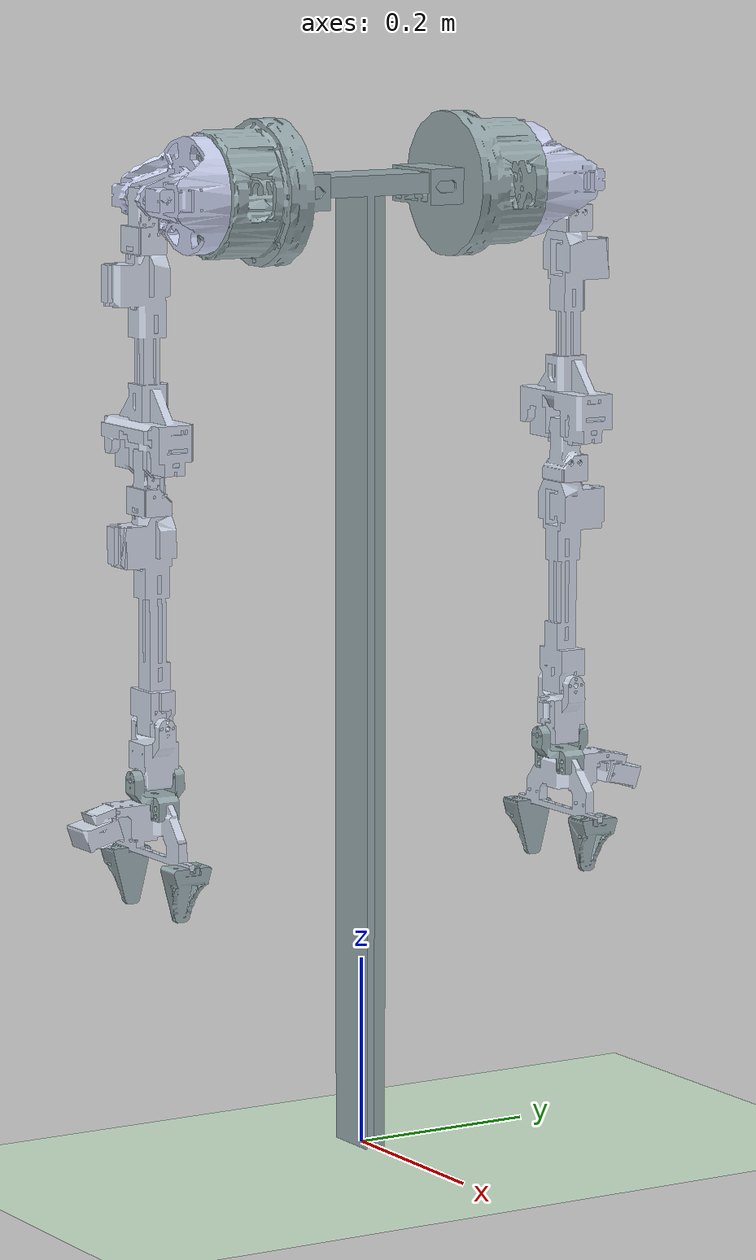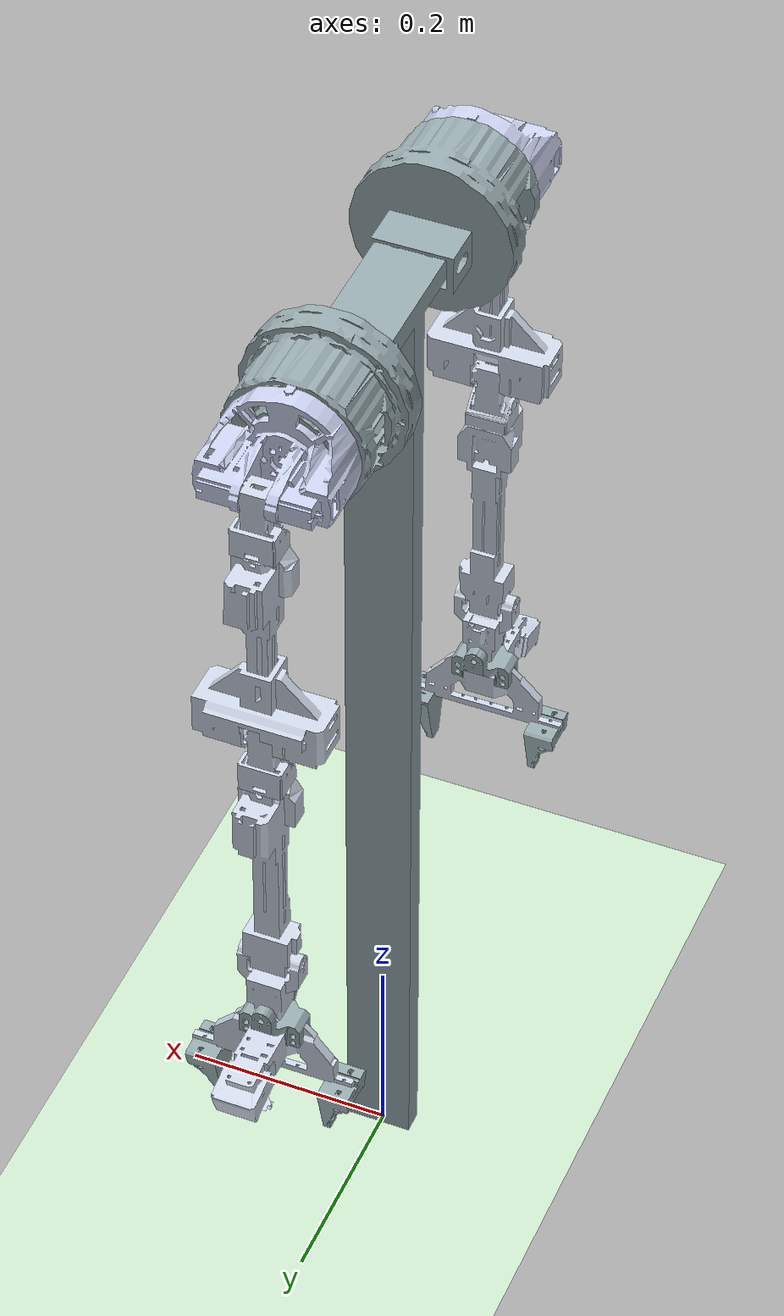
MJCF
<mujoco model="Bessica_D_v1_0_Skeleton">
  <compiler angle="radian" meshdir="../../meshes/Bessica_D_v1_0/SkeletonOnly/" />
  <statistic center="-0.012496 0.000424702 0.622672" extent="1.93611" meansize="0.179951" />

  <asset>
    <mesh name="base_link" file="base_link.STL" />
    <mesh name="left_arm_base_link" file="left_arm_base_link.STL" />
    <mesh name="left_arm_link1" file="left_arm_link1.STL" />
    <mesh name="left_arm_link2" file="left_arm_link2.STL" />
    <mesh name="left_arm_link3" file="left_arm_link3.STL" />
    <mesh name="left_arm_link4" file="left_arm_link4.STL" />
    <mesh name="left_arm_link5" file="left_arm_link5.STL" />
    <mesh name="left_arm_link6" file="left_arm_link6.STL" />
    <mesh name="left_arm_link7" file="left_arm_link7.STL" />
    <mesh name="left_arm_gripper_base" file="left_arm_gripper_base.STL" />
    <mesh name="left_arm_gripper_left_finger" file="left_arm_gripper_left_finger.STL" />
    <mesh name="left_arm_gripper_right_finger" file="left_arm_gripper_right_finger.STL" />
    <mesh name="right_arm_base_link" file="right_arm_base_link.STL" />
    <mesh name="right_arm_link1" file="right_arm_link1.STL" />
    <mesh name="right_arm_link2" file="right_arm_link2.STL" />
    <mesh name="right_arm_link3" file="right_arm_link3.STL" />
    <mesh name="right_arm_link4" file="right_arm_link4.STL" />
    <mesh name="right_arm_link5" file="right_arm_link5.STL" />
    <mesh name="right_arm_link6" file="right_arm_link6.STL" />
    <mesh name="right_arm_link7" file="right_arm_link7.STL" />
    <mesh name="right_arm_gripper_base" file="right_arm_gripper_base.STL" />
    <mesh name="right_arm_gripper_left_finger" file="right_arm_gripper_left_finger.STL" />
    <mesh name="right_arm_gripper_right_finger" file="right_arm_gripper_right_finger.STL" />
    <texture builtin="gradient" height="100" rgb1=".4 .5 .6" rgb2="0 0 0" type="skybox" width="100" />
    <texture builtin="checker" height="100" name="texplane" rgb1="1 1 1" rgb2=".8 .9 1" type="2d" width="100" />
    <material name="MatPlane" reflectance="0.5" texrepeat="1 1" texture="texplane" texuniform="true" />
    <material name="white" rgba="1 1 1 1" shininess="0.5" specular="0.1" />
    <material name="black" rgba="0.15 0.15 0.15 1" shininess="0.2" specular="0.05" />
    <material name="invisible" rgba="1 1 1 0" shininess="0" specular="0" />
  </asset>

  <worldbody>
    <geom conaffinity="1" condim="3" contype="1" friction="1 .1 .1" group="2" material="MatPlane" name="floor" pos="0 0 0" rgba="0.8 0.9 0.8 1" size="500 500 0.125" type="plane" />
    <light castshadow="false" cutoff="100" diffuse="1 1 1" dir="-0 0 -1.3" directional="true" exponent="1" pos="0 0 1.3" specular=".1 .1 .1" />
    <body name="base_link" pos="0 0 0">
      <inertial pos="0 0 0.051" mass="3.74344" diaginertia="0.00230599 0.00230599 0.00230599" />
      <geom type="mesh" contype="0" conaffinity="0" group="1" density="0" rgba="0.592157 0.666667 0.682353 1" mesh="base_link" />
      <geom type="mesh" rgba="0.592157 0.666667 0.682353 1" mesh="base_link" />
      <geom pos="0 0.1 1.015" quat="0.707107 -0.707107 0 0" type="mesh" contype="0" conaffinity="0" group="1" density="0" rgba="0.592157 0.666667 0.682353 1" mesh="left_arm_base_link" />
      <geom pos="0 0.1 1.015" quat="0.707107 -0.707107 0 0" type="mesh" rgba="0.592157 0.666667 0.682353 1" mesh="left_arm_base_link" />
      <geom pos="0 -0.1 1.015" quat="0.707107 0.707107 0 0" type="mesh" contype="0" conaffinity="0" group="1" density="0" rgba="0.592157 0.666667 0.682353 1" mesh="right_arm_base_link" />
      <geom pos="0 -0.1 1.015" quat="0.707107 0.707107 0 0" type="mesh" rgba="0.592157 0.666667 0.682353 1" mesh="right_arm_base_link" />
      <body name="left_arm_link1" pos="0 0.2145 1.015" quat="0.707107 0.707107 0 0">
        <inertial pos="-0.000164978 6.51728e-05 -0.0024357" quat="0.0012119 0.704936 -0.00489326 0.709253" mass="0.189922" diaginertia="0.000330272 0.000249765 0.000146333" />
        <joint name="left_arm_joint1" pos="0 0 0" axis="0 0 1" range="-2.14 2.14" actuatorfrcrange="-12 12" />
        <geom type="mesh" contype="0" conaffinity="0" group="1" density="0" rgba="0.796078 0.823529 0.937255 1" mesh="left_arm_link1" />
        <geom type="mesh" rgba="0.796078 0.823529 0.937255 1" mesh="left_arm_link1" />
        <body name="left_arm_link2" pos="0.00045 0 -0.04287" quat="0.5 -0.5 0.5 -0.5">
          <inertial pos="0.0292979 0.000514106 0.00037109" quat="0.607053 0.424784 0.480473 0.469245" mass="0.0465253" diaginertia="1.57559e-05 1.51621e-05 7.00441e-06" />
          <joint name="left_arm_joint2" pos="0 0 0" axis="0 0 1" range="-0.25 2.14" actuatorfrcrange="-12 12" />
          <geom type="mesh" contype="0" conaffinity="0" group="1" density="0" rgba="0.807843 0.843137 0.905882 1" mesh="left_arm_link2" />
          <geom type="mesh" rgba="0.807843 0.843137 0.905882 1" mesh="left_arm_link2" />
          <body name="left_arm_link3" pos="0.06395 -0.0001 -5e-05" quat="0.5 0.5 -0.5 -0.5">
            <inertial pos="0.000585817 2.67134e-05 -0.120888" quat="0.705612 0.708341 -0.0135456 0.0134441" mass="0.213446" diaginertia="0.000225683 0.000161805 0.000143351" />
            <joint name="left_arm_joint3" pos="0 0 0" axis="0 0 1" range="-2.14 2.14" actuatorfrcrange="-12 12" />
            <geom type="mesh" contype="0" conaffinity="0" group="1" density="0" rgba="0.807843 0.843137 0.905882 1" mesh="left_arm_link3" />
            <geom type="mesh" rgba="0.807843 0.843137 0.905882 1" mesh="left_arm_link3" />
            <body name="left_arm_link4" pos="0.00384 5e-05 -0.20261" quat="0.707107 -0.707107 0 0">
              <inertial pos="-0.000541939 0.0284058 0.000320347" quat="0.639534 0.763579 -0.0839367 0.0299576" mass="0.0480071" diaginertia="1.64685e-05 1.57747e-05 7.22527e-06" />
              <joint name="left_arm_joint4" pos="0 0 0" axis="0 0 1" range="-1.57 1.57" actuatorfrcrange="-12 12" />
              <geom type="mesh" contype="0" conaffinity="0" group="1" density="0" rgba="0.807843 0.843137 0.905882 1" mesh="left_arm_link4" />
              <geom type="mesh" rgba="0.807843 0.843137 0.905882 1" mesh="left_arm_link4" />
              <body name="left_arm_link5" pos="0 0.06395 -0.00025" quat="0.707107 0.707107 0 0">
                <inertial pos="-0.000910668 -0.000236819 -0.0811518" quat="0.706373 -0.0214097 -0.0227093 0.707152" mass="0.11632" diaginertia="0.000100264 9.34946e-05 3.80105e-05" />
                <joint name="left_arm_joint5" pos="0 0 0" axis="0 0 1" range="-2.14 2.14" actuatorfrcrange="-12 12" />
                <geom type="mesh" contype="0" conaffinity="0" group="1" density="0" rgba="0.807843 0.843137 0.905882 1" mesh="left_arm_link5" />
                <geom type="mesh" rgba="0.807843 0.843137 0.905882 1" mesh="left_arm_link5" />
                <body name="left_arm_link6" pos="0.00384 0 -0.2106" quat="0.707107 -0.707107 0 0">
                  <inertial pos="0.000759195 0.0240066 4.41836e-05" quat="0.999602 0.00398416 -0.000608784 0.0279095" mass="0.0325623" diaginertia="1.56847e-05 1.2779e-05 9.25012e-06" />
                  <joint name="left_arm_joint6" pos="0 0 0" axis="0 0 1" range="-1.57 1.57" actuatorfrcrange="-12 12" />
                  <geom type="mesh" contype="0" conaffinity="0" group="1" density="0" rgba="0.807843 0.843137 0.905882 1" mesh="left_arm_link6" />
                  <geom type="mesh" rgba="0.807843 0.843137 0.905882 1" mesh="left_arm_link6" />
                  <body name="left_arm_link7" pos="0.0009 0.0556 0" quat="0.5 -0.5 -0.5 0.5">
                    <inertial pos="0.0419064 -0.000135185 0.0266704" quat="0.702948 0.64131 0.227637 -0.206801" mass="0.130618" diaginertia="0.000133483 9.13959e-05 8.92644e-05" />
                    <joint name="left_arm_joint7" pos="0 0 0" axis="0 0 -1" range="-1.57 1.57" actuatorfrcrange="-12 12" />
                    <geom type="mesh" contype="0" conaffinity="0" group="1" density="0" rgba="0.592157 0.666667 0.682353 1" mesh="left_arm_link7" />
                    <geom type="mesh" rgba="0.592157 0.666667 0.682353 1" mesh="left_arm_link7" />
                    <geom type="mesh" contype="0" conaffinity="0" group="1" density="0" rgba="0.807843 0.843137 0.905882 1" mesh="left_arm_gripper_base" />
                    <geom type="mesh" rgba="0.807843 0.843137 0.905882 1" mesh="left_arm_gripper_base" />
                    <body name="left_arm_gripper_left_finger" pos="0.14128 0.05 5e-05" quat="0.707107 0.707107 0 0">
                      <inertial pos="-0.0434087 -1.54744e-08 -0.0111596" quat="1.78243e-06 0.569751 -6.42992e-06 0.821818" mass="0.0256463" diaginertia="8.50963e-06 6.46826e-06 4.6607e-06" />
                      <joint name="left_arm_gripper_joint1" pos="0 0 0" axis="0 0 1" type="slide" range="0 0.05" actuatorfrcrange="-12 12" />
                      <geom type="mesh" contype="0" conaffinity="0" group="1" density="0" rgba="0.592157 0.666667 0.682353 1" mesh="left_arm_gripper_left_finger" />
                      <geom type="mesh" rgba="0.592157 0.666667 0.682353 1" mesh="left_arm_gripper_left_finger" />
                    </body>
                    <body name="left_arm_gripper_right_finger">
                      <inertial pos="0.097871 -0.0611558 5.00155e-05" quat="0.402876 0.402873 0.581108 0.581117" mass="0.0256463" diaginertia="8.50963e-06 6.46826e-06 4.6607e-06" />
                      <joint name="left_arm_gripper_joint2" pos="0 0 0" axis="0 -1 0" type="slide" range="-0.05 0" actuatorfrcrange="-12 12" />
                      <geom type="mesh" contype="0" conaffinity="0" group="1" density="0" rgba="0.592157 0.666667 0.682353 1" mesh="left_arm_gripper_right_finger" />
                      <geom type="mesh" rgba="0.592157 0.666667 0.682353 1" mesh="left_arm_gripper_right_finger" />
                    </body>
                  </body>
                </body>
              </body>
            </body>
          </body>
        </body>
      </body>
      <body name="right_arm_link1" pos="0 -0.2145 1.015" quat="0.707107 0.707107 0 0">
        <inertial pos="5.41405e-05 6.54109e-05 0.00226762" quat="-0.00121154 0.704936 0.00489295 0.709253" mass="0.189136" diaginertia="0.000330251 0.000249745 0.000146311" />
        <joint name="right_arm_joint1" pos="0 0 0" axis="0 0 1" range="-2.14 2.14" actuatorfrcrange="-12 12" />
        <geom type="mesh" contype="0" conaffinity="0" group="1" density="0" rgba="0.796078 0.823529 0.937255 1" mesh="right_arm_link1" />
        <geom type="mesh" rgba="0.796078 0.823529 0.937255 1" mesh="right_arm_link1" />
        <body name="right_arm_link2" pos="-0.00045 0 0.04287" quat="0.5 0.5 -0.5 -0.5">
          <inertial pos="0.0294209 0.000476964 6.89589e-05" quat="0.611373 0.419718 0.487356 0.461025" mass="0.0501482" diaginertia="1.62891e-05 1.57687e-05 7.39432e-06" />
          <joint name="right_arm_joint2" pos="0 0 0" axis="0 0 1" range="-0.25 2.14" actuatorfrcrange="-12 12" />
          <geom type="mesh" contype="0" conaffinity="0" group="1" density="0" rgba="0.807843 0.843137 0.905882 1" mesh="right_arm_link2" />
          <geom type="mesh" rgba="0.807843 0.843137 0.905882 1" mesh="right_arm_link2" />
          <body name="right_arm_link3" pos="0.06395 -0.0001 -5e-05" quat="0.5 -0.5 0.5 -0.5">
            <inertial pos="0.000585817 -2.67137e-05 0.120888" quat="0.705612 0.708341 0.0135456 -0.0134441" mass="0.213446" diaginertia="0.000225683 0.000161805 0.000143351" />
            <joint name="right_arm_joint3" pos="0 0 0" axis="0 0 1" range="-2.14 2.14" actuatorfrcrange="-12 12" />
            <geom type="mesh" contype="0" conaffinity="0" group="1" density="0" rgba="0.807843 0.843137 0.905882 1" mesh="right_arm_link3" />
            <geom type="mesh" rgba="0.807843 0.843137 0.905882 1" mesh="right_arm_link3" />
            <body name="right_arm_link4" pos="0.00384 -5e-05 0.20261" quat="0.707107 0.707107 0 0">
              <inertial pos="-0.000541939 0.0284058 0.000320347" quat="0.639534 0.763579 -0.0839367 0.0299576" mass="0.0480071" diaginertia="1.64685e-05 1.57747e-05 7.22527e-06" />
              <joint name="right_arm_joint4" pos="0 0 0" axis="0 0 1" range="-1.57 1.57" actuatorfrcrange="-12 12" />
              <geom type="mesh" contype="0" conaffinity="0" group="1" density="0" rgba="0.807843 0.843137 0.905882 1" mesh="right_arm_link4" />
              <geom type="mesh" rgba="0.807843 0.843137 0.905882 1" mesh="right_arm_link4" />
              <body name="right_arm_link5" pos="0 0.06395 -0.00025" quat="0.707107 -0.707107 0 0">
                <inertial pos="-0.000910668 0.000236819 0.0811518" quat="0.707152 0.0227093 0.0214097 0.706373" mass="0.11632" diaginertia="0.000100264 9.34946e-05 3.80105e-05" />
                <joint name="right_arm_joint5" pos="0 0 0" axis="0 0 1" range="-2.14 2.14" actuatorfrcrange="-12 12" />
                <geom type="mesh" contype="0" conaffinity="0" group="1" density="0" rgba="0.807843 0.843137 0.905882 1" mesh="right_arm_link5" />
                <geom type="mesh" rgba="0.807843 0.843137 0.905882 1" mesh="right_arm_link5" />
                <body name="right_arm_link6" pos="0.00384 0 0.2106" quat="0.707107 0.707107 0 0">
                  <inertial pos="0.000759195 0.0240066 4.41836e-05" quat="0.999602 0.00398416 -0.000608784 0.0279095" mass="0.0325623" diaginertia="1.56847e-05 1.2779e-05 9.25012e-06" />
                  <joint name="right_arm_joint6" pos="0 0 0" axis="0 0 1" range="-1.57 1.57" actuatorfrcrange="-12 12" />
                  <geom type="mesh" contype="0" conaffinity="0" group="1" density="0" rgba="0.807843 0.843137 0.905882 1" mesh="right_arm_link6" />
                  <geom type="mesh" rgba="0.807843 0.843137 0.905882 1" mesh="right_arm_link6" />
                  <body name="right_arm_link7" pos="0.0009 0.0556 0" quat="0.5 -0.5 -0.5 0.5">
                    <inertial pos="0.0419064 -0.000135185 0.0266704" quat="0.702948 0.64131 0.227637 -0.206801" mass="0.130618" diaginertia="0.000133483 9.13959e-05 8.92644e-05" />
                    <joint name="right_arm_joint7" pos="0 0 0" axis="0 0 1" range="-1.57 1.57" actuatorfrcrange="-12 12" />
                    <geom type="mesh" contype="0" conaffinity="0" group="1" density="0" rgba="0.592157 0.666667 0.682353 1" mesh="right_arm_link7" />
                    <geom type="mesh" rgba="0.592157 0.666667 0.682353 1" mesh="right_arm_link7" />
                    <geom type="mesh" contype="0" conaffinity="0" group="1" density="0" rgba="0.807843 0.843137 0.905882 1" mesh="right_arm_gripper_base" />
                    <geom type="mesh" rgba="0.807843 0.843137 0.905882 1" mesh="right_arm_gripper_base" />
                    <body name="right_arm_gripper_left_finger" pos="0.14128 0.0505 5e-05" quat="0.707107 0.707107 0 0">
                      <inertial pos="-0.0434087 -1.54794e-08 -0.0106596" quat="1.78281e-06 0.569751 -6.43108e-06 0.821818" mass="0.0256463" diaginertia="8.50963e-06 6.46826e-06 4.6607e-06" />
                      <joint name="right_arm_gripper_joint1" pos="0 0 0" axis="0 0 1" type="slide" range="0 0.05" actuatorfrcrange="-12 12" />
                      <geom type="mesh" contype="0" conaffinity="0" group="1" density="0" rgba="0.592157 0.666667 0.682353 1" mesh="right_arm_gripper_left_finger" />
                      <geom type="mesh" rgba="0.592157 0.666667 0.682353 1" mesh="right_arm_gripper_left_finger" />
                    </body>
                    <body name="right_arm_gripper_right_finger" pos="0.14128 -0.0505 5e-05" quat="0.707107 -0.707107 0 0">
                      <inertial pos="-0.0434087 -1.54806e-08 -0.0106558" quat="1.78288e-06 0.569751 -6.43136e-06 0.821818" mass="0.0256463" diaginertia="8.50963e-06 6.46826e-06 4.6607e-06" />
                      <joint name="right_arm_gripper_joint2" pos="0 0 0" axis="0 0 -1" type="slide" range="-0.05 0" actuatorfrcrange="-12 12" />
                      <geom type="mesh" contype="0" conaffinity="0" group="1" density="0" rgba="0.592157 0.666667 0.682353 1" mesh="right_arm_gripper_right_finger" />
                      <geom type="mesh" rgba="0.592157 0.666667 0.682353 1" mesh="right_arm_gripper_right_finger" />
                    </body>
                  </body>
                </body>
              </body>
            </body>
          </body>
        </body>
      </body>
    </body>
  </worldbody>
</mujoco>
